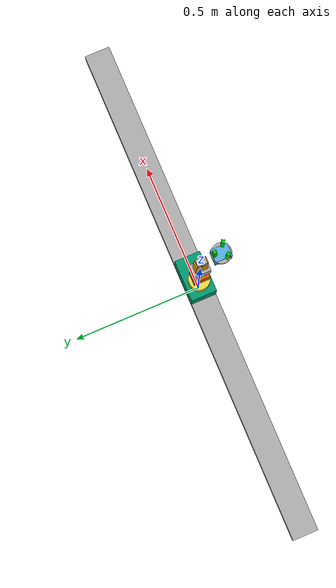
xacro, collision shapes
<?xml version="1.0"?>
<robot xmlns:xacro="http://www.ros.org/wiki/xacro" name="harvest_robot">

  <xacro:include filename="$(find harvest_description)/urdf/mech/rail.urdf.xacro"/>
  <xacro:include filename="$(find harvest_description)/urdf/mech/harvest_arm.urdf.xacro"/>
  <xacro:include filename="$(find harvest_description)/urdf/mech/soft_gripper.urdf.xacro"/>

  <!-- Color Materials -->
  <material name="silver"><color rgba="0.7 0.7 0.7 1.0"/></material>
  <material name="blue"><color rgba="0.0 0.0 0.8 1.0"/></material>
  <material name="green"><color rgba="0.0 0.8 0.0 1.0"/></material>
  <material name="red"><color rgba="0.8 0.0 0.0 1.0"/></material>

  <xacro:rail/>
  <xacro:harvest_arm/>
  <xacro:soft_gripper/>

  <!-- GAZEBO SIMULATION SYSTEM PLUGIN -->
  <!-- Keep the visual simulation independent from ros2_control startup. -->
  <gazebo>
    <plugin filename="gz_ros2_control-system"
        name="gz_ros2_control::GazeboSimROS2ControlPlugin">
      <!-- CRITICAL JAZZY COUPLING: Directs Gazebo to pull from the publisher node -->
      <robot_param>robot_description</robot_param>
      <robot_param_node>robot_state_publisher</robot_param_node>
      <parameters>$(find harvest_description)/urdf/config/robot_controllers.yaml</parameters>
    </plugin>
  </gazebo>

  <!-- ROS2_CONTROL HARDWARE INTERFACE DEFINITION -->
  <ros2_control name="GazeboSimSystem" type="system">
  <hardware>
    <plugin>gz_ros2_control/GazeboSimSystem</plugin>
  </hardware>

  <joint name="rail_joint">
      <command_interface name="position"><param name="min">-0.9</param><param name="max">0.9</param></command_interface>
      <command_interface name="effort"/>
      <state_interface name="position"/><state_interface name="velocity"/><state_interface name="effort"/>
  </joint>
  <joint name="base_joint">
    <command_interface name="position"><param name="min">-3.14</param><param name="max">3.14</param></command_interface>
    <command_interface name="effort"/>
    <state_interface name="position"/><state_interface name="velocity"/><state_interface name="effort"/>
  </joint>
  <joint name="shoulder_joint">
    <command_interface name="position"><param name="min">-1.57</param><param name="max">1.57</param></command_interface>
    <command_interface name="effort"/>
    <state_interface name="position"/><state_interface name="velocity"/><state_interface name="effort"/>
  </joint>
  <joint name="elbow_joint">
    <command_interface name="position"><param name="min">-2.0</param><param name="max">2.0</param></command_interface>
    <command_interface name="effort"/>
    <state_interface name="position"/><state_interface name="velocity"/><state_interface name="effort"/>
  </joint>
  <joint name="wrist_pitch_joint">
    <command_interface name="position"><param name="min">-1.57</param><param name="max">1.57</param></command_interface>
    <command_interface name="effort"/>
    <state_interface name="position"/><state_interface name="velocity"/><state_interface name="effort"/>
  </joint>
  <joint name="wrist_roll_joint">
    <command_interface name="position"><param name="min">-3.14</param><param name="max">3.14</param></command_interface>
    <command_interface name="effort"/>
    <state_interface name="position"/><state_interface name="velocity"/><state_interface name="effort"/>
  </joint>
  <!-- The soft fingers use position commands independently of the arm effort controller. -->
  <joint name="finger_joint_1">
    <command_interface name="position"><param name="min">-0.18</param><param name="max">0.0</param></command_interface>
    <state_interface name="position"/><state_interface name="velocity"/>
  </joint>
  <joint name="finger_joint_2">
    <command_interface name="position"><param name="min">-0.18</param><param name="max">0.0</param></command_interface>
    <state_interface name="position"/><state_interface name="velocity"/>
  </joint>
  <joint name="finger_joint_3">
    <command_interface name="position"><param name="min">-0.18</param><param name="max">0.0</param></command_interface>
    <state_interface name="position"/><state_interface name="velocity"/>
  </joint>
  </ros2_control>

</robot>

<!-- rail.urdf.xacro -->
<robot xmlns:xacro="http://www.ros.org/wiki/xacro">

	<xacro:include filename="$(find harvest_description)/urdf/robot_utils.urdf.xacro"/>

	<xacro:macro name="rail">
		<!-- WORLD ANCHOR AND RAIL -->
		<!-- The rail macro owns the single world link used by the whole robot. -->
		<link name="world"/>

		<joint name="world_to_rail" type="fixed">
			<parent link="world"/>
			<child link="rail_link"/>
			<origin xyz="0 0 0" rpy="0 0 0"/>
		</joint>

		<link name="rail_link">
			<visual>
			<geometry><box size="2.0 0.1 0.05"/></geometry>
			<material name="silver"/>
			</visual>
			<collision>
			<geometry><box size="2.0 0.1 0.05"/></geometry>
			</collision>
			<!-- Heavy structural aluminum rail frame (15 kg) -->
			<xacro:box_inertial mass="15.0" x="2.0" y="0.1" z="0.05">
			<origin xyz="0 0 0" rpy="0 0 0"/>
			</xacro:box_inertial>
		</link>

		<!-- 1. Rail Prismatic Joint -->
		<!-- The carriage frame is on the rail's upper face (half of its 50 mm
		     thickness), so the carriage housing rests directly on the rail. -->
		<joint name="rail_joint" type="prismatic">
			<parent link="rail_link"/>
			<child link="base_link"/>
			<axis xyz="1 0 0"/>
			<limit lower="-0.9" upper="0.9" effort="200.0" velocity="0.5"/>
			<origin xyz="0 0 0.025" rpy="0 0 0"/>
			<!-- Keep rail stiction below the PID's available correction so X can settle on target. -->
			<dynamics damping="2.0" friction="0.1"/>
		</joint>
	</xacro:macro>
</robot>

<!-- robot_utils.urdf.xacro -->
<robot xmlns:xacro="http://www.ros.org/wiki/xacro">

    <!-- INERTIAL MATH MACROS -->
    <!-- Cylinder Inertia Formula -->
    <xacro:macro name="cylinder_inertial" params="mass radius length *origin">
        <inertial>
            <xacro:insert_block name="origin"/>
            <mass value="${mass}"/>
            <inertia ixx="${(1/12) * mass * (3*radius*radius + length*length)}" ixy="0.0" ixz="0.0"
                     iyy="${(1/12) * mass * (3*radius*radius + length*length)}" iyz="0.0"
                     izz="${(1/2) * mass * radius * radius}"/>
        </inertial>
    </xacro:macro>

    <!-- Box Inertia Formula -->
    <xacro:macro name="box_inertial" params="mass x y z *origin">
        <inertial>
            <xacro:insert_block name="origin"/>
            <mass value="${mass}"/>
            <inertia ixx="${(1/12) * mass * (y*y + z*z)}" ixy="0.0" ixz="0.0"
                     iyy="${(1/12) * mass * (x*x + z*z)}" iyz="0.0"
                     izz="${(1/12) * mass * (x*x + y*y)}"/>
        </inertial>
    </xacro:macro>

</robot>

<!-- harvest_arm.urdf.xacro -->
<robot xmlns:xacro="http://www.ros.org/wiki/xacro">

  <xacro:include filename="$(find harvest_description)/urdf/robot_utils.urdf.xacro"/>

  <!-- CAD actuator components are kept visual-only; existing collision bodies
       stay lightweight and predictable for Gazebo contact and dynamics. -->
  <xacro:macro name="actuator_housing_visuals"
               params="xyz housing_rpy internal_rpy">
    <visual>
      <origin xyz="${xyz}" rpy="${housing_rpy}"/>
      <geometry><mesh filename="package://harvest_description/meshes/external_housing.gltf"/></geometry>
    </visual>
    <visual>
      <origin xyz="${xyz}" rpy="${internal_rpy}"/>
      <geometry><mesh filename="package://harvest_description/meshes/gearbox_housing.gltf"/></geometry>
    </visual>
    <visual>
      <origin xyz="${xyz}" rpy="${internal_rpy}"/>
      <geometry><mesh filename="package://harvest_description/meshes/nema17_smal.gltf"/></geometry>
    </visual>
  </xacro:macro>

  <xacro:macro name="output_drive_visual" params="xyz rpy">
    <visual>
      <origin xyz="${xyz}" rpy="${rpy}"/>
      <geometry><mesh filename="package://harvest_description/meshes/exterior_output_drive.gltf"/></geometry>
    </visual>
  </xacro:macro>

  <xacro:macro name="harvest_arm">
    <!--
      The actuator sheet specifies a 200 g turret pedestal and five 575 g
      actuators. The base link carries the pedestal and yaw actuator together.
    -->
    <link name="base_link">
      <visual>
        <!-- Raise the CAD's bottom-at-Z=0.108 mesh datum to the carriage top. -->
        <origin xyz="-0.004 0.0134887 0.108" rpy="0 0 0"/>
        <geometry><mesh filename="package://harvest_description/meshes/base_pcb_box.gltf"/></geometry>
      </visual>
      <!-- CAD yaw housing sits below the output frame; the pin rotates with shoulder_link. -->
      <xacro:actuator_housing_visuals xyz="0 0 0.071"
                                      housing_rpy="0 0 0"
                                      internal_rpy="0 0 -2.83984"/>
      <collision>
        <origin xyz="0.03 0 0.054" rpy="0 0 0"/>
        <geometry><box size="0.16 0.10 0.108"/></geometry>
      </collision>
      <inertial>
        <origin xyz="0 0 0.05" rpy="0 0 0"/>
        <mass value="0.775"/>
        <inertia ixx="0.001230" ixy="0" ixz="0"
                 iyy="0.001230" iyz="0" izz="0.001172"/>
      </inertial>
    </link>

    <!-- The yaw axis sits at the top of the 108 mm pedestal, not in the rail. -->
    <!-- J1 Base Yaw -->
    <joint name="base_joint" type="revolute">
      <parent link="base_link"/>
      <child link="shoulder_link"/>
      <origin xyz="0 0 0.108" rpy="0 0 0"/>
      <axis xyz="0 0 1"/>
      <!-- updated all joint limit tags so that arm does not sag under gravity. -->
      <limit lower="-3.14159" upper="3.14159" effort="4.0" velocity="1.0"/>
      <dynamics damping="0.2" friction="0.05"/>
    </joint>

    <!-- J1 shoulder actuator (575 g), mounted at the first pitch axis. -->
    <link name="shoulder_link">
      <!-- The wide face of the yaw output pin faces outward from the turret. -->
      <xacro:output_drive_visual xyz="0 0 -0.037" rpy="0 0 2.23158"/>
      <visual>
        <!-- The CAD pedestal rises from the base yaw output to the shoulder. -->
        <origin xyz="-0.013783 -0.002826 0.002" rpy="0 0 1.48478"/>
        <geometry><mesh filename="package://harvest_description/meshes/base_to_link.gltf"/></geometry>
      </visual>
      <!-- Housing parts are CAD-aligned to the shoulder output frame at z=0.096. -->
      <xacro:actuator_housing_visuals xyz="0 0.045 0.061"
                                      housing_rpy="1.5708 -1.5708 0"
                                      internal_rpy="1.5708 1.26905 0"/>
      <collision>
        <origin xyz="0 0 0.096" rpy="0 0 0"/>
        <geometry><cylinder radius="0.040" length="0.045"/></geometry>
      </collision>
      <inertial>
        <origin xyz="0 0 0.096" rpy="1.5708 0 0"/>
        <mass value="0.575"/>
        <inertia ixx="0.000327" ixy="0" ixz="0"
                 iyy="0.000327" iyz="0" izz="0.000460"/>
      </inertial>
    </link>

    <!-- Link 1 is 150 mm center-to-center; its 100 g mass is from the sheet. -->
    <!-- J2 Shoulder Pitch (Lifts the entire 2kg arm assembly) -->
    <joint name="shoulder_joint" type="revolute">
      <parent link="shoulder_link"/>
      <child link="elbow_link"/>
      <!-- A zero shoulder angle now points the arm upward for a safe spawn pose. -->
      <origin xyz="0 0 0.061" rpy="0 -1.5708 0"/>
      <axis xyz="0 1 0"/>
      <limit lower="-1.5708" upper="1.5708" effort="8.5" velocity="1.0"/>
      <dynamics damping="0.2" friction="0.05"/>
    </joint>

    <link name="elbow_link">
      <!-- This shoulder pin is on the moving link, with its broad face outward. -->
      <xacro:output_drive_visual xyz="0 0.037 0"
                                 rpy="1.5708 -0.40657 0"/>
      <visual>
        <!-- Rotate around the pin axis; origin compensation keeps the small hole fixed. -->
        <origin xyz="-0.060000 -0.028000 -0.013489"
                rpy="-1.570799 -0.000001 -1.570795"/>
        <!-- Full CAD scale restores both end-hole diameters for the pin fits. -->
        <geometry><mesh filename="package://harvest_description/meshes/joint_to_joint.gltf"
                        scale="1 1 1"/></geometry>
      </visual>
      <collision>
        <origin xyz="0.075 0 0" rpy="0 0 0"/>
        <geometry><box size="0.15 0.035 0.025"/></geometry>
      </collision>
      <inertial>
        <origin xyz="0.075 0 0" rpy="0 0 0"/>
        <mass value="0.10"/>
        <inertia ixx="0.00001917" ixy="0" ixz="0"
                 iyy="0.00019010" iyz="0" izz="0.00019354"/>
      </inertial>
    </link>

    <!-- J2 is at the end of link 1; its actuator mass is kept at the joint. -->
    <joint name="elbow_actuator_mount" type="fixed">
      <parent link="elbow_link"/>
      <child link="elbow_actuator_link"/>
      <origin xyz="0.15 0 0" rpy="0 0 0"/>
    </joint>

    <link name="elbow_actuator_link">
      <!-- CAD elbow housing; its output pin is attached to wrist_pitch_link. -->
      <xacro:actuator_housing_visuals xyz="0 0.037 0"
                                      housing_rpy="1.5708 0 0"
                                      internal_rpy="-1.5708 0.30175 -3.14159"/>
      <collision>
        <geometry><box size="0.065 0.060 0.045"/></geometry>
      </collision>
      <inertial>
        <mass value="0.575"/>
        <inertia ixx="0.0003586" ixy="0" ixz="0"
                 iyy="0.0003981" iyz="0" izz="0.0003813"/>
      </inertial>
    </link>

    <!-- Link 2 is the second 150 mm link, with its 100 g structural mass. -->
    <!-- J3 Elbow Pitch (Lifts the forearm, two actuators, and gripper) -->
    <joint name="elbow_joint" type="revolute">
      <parent link="elbow_actuator_link"/>
      <child link="wrist_pitch_link"/>
      <axis xyz="0 1 0"/>
      <limit lower="-2.0" upper="2.0" effort="8.5" velocity="1.0"/>
      <dynamics damping="0.2" friction="0.05"/>
    </joint>

    <link name="wrist_pitch_link">
      <xacro:output_drive_visual xyz="0 0.037 0"
                                 rpy="1.5708 -1.02212 0"/>
      <visual>
        <!-- Rotate around the pin axis; origin compensation keeps the small hole fixed. -->
        <origin xyz="-0.060000 -0.028000 -0.013489"
                rpy="-1.570802 0.000000 -1.570796"/>
        <!-- Match the first connector's CAD-scale end holes and pin fit. -->
        <geometry><mesh filename="package://harvest_description/meshes/joint_to_joint.gltf"
                        scale="1 1 1"/></geometry>
      </visual>
      <collision>
        <origin xyz="0.075 0 0" rpy="0 0 0"/>
        <geometry><box size="0.15 0.032 0.024"/></geometry>
      </collision>
      <inertial>
        <origin xyz="0.075 0 0" rpy="0 0 0"/>
        <mass value="0.10"/>
        <inertia ixx="0.00001333" ixy="0" ixz="0"
                 iyy="0.00019230" iyz="0" izz="0.00019520"/>
      </inertial>
    </link>

    <!-- J3 is the upper elbow actuator at the end of link 2. -->
    <joint name="wrist_pitch_actuator_mount" type="fixed">
      <parent link="wrist_pitch_link"/>
      <child link="wrist_pitch_actuator_link"/>
      <origin xyz="0.15 0 0" rpy="0 0 0"/>
    </joint>

    <link name="wrist_pitch_actuator_link">
      <!-- CAD wrist-pitch housing; the output pin moves with wrist_roll_link. -->
      <xacro:actuator_housing_visuals xyz="0 0.037 0"
                                      housing_rpy="1.5708 0 0"
                                      internal_rpy="-1.5708 0.30175 -3.14159"/>
      <collision>
        <geometry><box size="0.065 0.060 0.045"/></geometry>
      </collision>
      <inertial>
        <mass value="0.575"/>
        <inertia ixx="0.0003586" ixy="0" ixz="0"
                 iyy="0.0003981" iyz="0" izz="0.0003813"/>
      </inertial>
    </link>

    <!-- Link 3 is the 150 g, 150 mm wrist link from the actuator sheet. -->
    <!-- J4 Wrist Pitch (Lifts the roll actuator and gripper) -->
    <joint name="wrist_pitch_joint" type="revolute">
      <parent link="wrist_pitch_actuator_link"/>
      <child link="wrist_roll_link"/>
      <axis xyz="0 1 0"/>
      <limit lower="-1.5708" upper="1.5708" effort="4.0" velocity="1.5"/>
      <dynamics damping="0.1" friction="0.02"/>
    </joint>

    <link name="wrist_roll_link">
      <xacro:output_drive_visual xyz="0 0.037 0"
                                 rpy="1.5708 0.607152 0"/>
      <visual>
        <origin xyz="0.011667 -0.026998 -0.363404"
                rpy="0 0 -1.5708"/>
        <geometry><mesh filename="package://harvest_description/meshes/Part_4.gltf"/></geometry>
      </visual>
      <collision>
        <origin xyz="0.075 0 0" rpy="0 0 0"/>
        <geometry><box size="0.15 0.045 0.025"/></geometry>
      </collision>
      <inertial>
        <origin xyz="0.075 0 0" rpy="0 0 0"/>
        <mass value="0.15"/>
        <inertia ixx="0.00003313" ixy="0" ixz="0"
                 iyy="0.00028906" iyz="0" izz="0.00030656"/>
      </inertial>
    </link>

    <!-- J4 rolls the tool about the arm's longitudinal axis. -->
    <joint name="wrist_roll_actuator_mount" type="fixed">
      <parent link="wrist_roll_link"/>
      <child link="wrist_roll_actuator_link"/>
      <origin xyz="0.14 -0.072 0" rpy="0 0 0"/>
    </joint>

    <link name="wrist_roll_actuator_link">
      <!-- End housing faces down; the CAD-aligned output pin is on the tool mount. -->
      <xacro:actuator_housing_visuals xyz="-0.037 0 0"
                                      housing_rpy="0 1.5708 0"
                                      internal_rpy="-1.5708 -1.26905 -1.5708"/>
      <collision>
        <geometry><box size="0.065 0.060 0.045"/></geometry>
      </collision>
      <inertial>
        <mass value="0.575"/>
        <inertia ixx="0.0003586" ixy="0" ixz="0"
                 iyy="0.0003981" iyz="0" izz="0.0003813"/>
      </inertial>
    </link>

    <!-- J5 Wrist Roll -->
    <joint name="wrist_roll_joint" type="revolute">
      <parent link="wrist_roll_actuator_link"/>
      <child link="end_effector_tool_mount"/>
      <!-- Place the tool flange on the output face, above the housing when upright. -->
      <origin xyz="0.02 0 0" rpy="0 0 0"/>
      <axis xyz="1 0 0"/>
      <limit lower="-3.14159" upper="3.14159" effort="4.0" velocity="1.5"/>
      <dynamics damping="0.1" friction="0.02"/>
    </joint>

    <link name="end_effector_tool_mount">
      <xacro:output_drive_visual xyz="-0.057 0 0"
                                 rpy="1.5708 0.163976 1.5708"/>
      <visual>
        <origin xyz="0 0 0" rpy="0 1.5708 0"/>
        <geometry><cylinder radius="0.035" length="0.012"/></geometry>
        <material name="silver"/>
      </visual>
      <collision>
        <origin xyz="0 0 0" rpy="0 1.5708 0"/>
        <geometry><cylinder radius="0.035" length="0.012"/></geometry>
      </collision>
      <inertial>
        <mass value="0.01"/>
        <!-- Match the cylinder collision's X-axis length and satisfy rigid-body inertia bounds. -->
        <inertia ixx="0.0000061" ixy="0" ixz="0"
                 iyy="0.0000032" iyz="0" izz="0.0000032"/>
      </inertial>
    </link>
  </xacro:macro>
</robot>

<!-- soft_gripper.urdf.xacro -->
<robot xmlns:xacro="http://www.ros.org/wiki/xacro">

  <xacro:include filename="$(find harvest_description)/urdf/robot_utils.urdf.xacro"/>

  <xacro:macro name="soft_gripper">
    <!-- Mount the camera beside the dark-blue wrist link, clear of the gripper fingers. -->
    <joint name="camera_joint" type="fixed">
      <parent link="wrist_roll_link"/>
      <child link="camera_link"/>
      <!-- Bring the rotated housing edge onto the link's +Y side; aim at berries when upright. -->
      <origin xyz="0.15 0 0" rpy="0 0 1.5"/>
    </joint>

    <link name="camera_link">
      <visual>
        <geometry><box size="0.035 0.035 0.025"/></geometry>
        <material name="silver"/>
      </visual>
      <collision>
        <geometry><box size="0.035 0.035 0.025"/></geometry>
      </collision>
      <xacro:box_inertial mass="0.05" x="0.035" y="0.035" z="0.025">
        <origin xyz="0 0 0" rpy="0 0 0"/>
      </xacro:box_inertial>
    </link>

    <!-- CAMERA SENSOR PLUGIN INTEGRATION -->
    <gazebo reference="camera_link">
      <sensor name="harvester_camera" type="camera">
        <!-- Offset the optical origin just beyond the camera housing's front face. -->
        <pose>0.02 0 0 0 0 0</pose>
        <always_on>true</always_on>
        <update_rate>15.0</update_rate>
        <visualize>true</visualize> <!-- Displays a visual cone of sight inside Gazebo -->
        <topic>camera/image_raw</topic> <!-- The internal Gazebo transport topic channel -->
        <camera>
          <horizontal_fov>1.5708</horizontal_fov> <!-- 90 degree viewing path field -->
          <image>
            <width>640</width>
            <height>360</height>
            <format>R8G8B8</format> <!-- Clear RGB pixel array maps -->
          </image>
          <clip>
            <near>0.02</near> <!-- 2cm minimum focal range for close pluck inspection -->
            <far>5.0</far>
          </clip>
        </camera>
      </sensor>
    </gazebo>

      <!-- Finger Template Macro (Instantiates 3 flexible grasping links at 120-degree patterns) -->
    <!-- Each lightweight 80 mm finger extends forward along the arm's +X axis. -->
    <xacro:macro name="finger" params="prefix angle">
      <!-- Low-effort revolute hinges curl the fingers inward without clamping the berry. -->
      <joint name="finger_joint_${prefix}" type="revolute">
        <parent link="end_effector_tool_mount"/>
        <child link="finger_link_${prefix}"/>
        <origin xyz="0.005 ${0.025 * cos(angle)} ${0.025 * sin(angle)}"
                rpy="${angle} 0 0"/>
        <axis xyz="0 0 1"/>
        <limit lower="-0.18" upper="0.0" effort="0.02" velocity="0.2"/>
        <dynamics damping="0.05" friction="0.01"/>
      </joint>

      <link name="finger_link_${prefix}">
        <visual>
          <origin xyz="0.04 0 0" rpy="0 0 0"/>
          <geometry><box size="0.08 0.012 0.012"/></geometry>
          <material name="green"/>
        </visual>
        <collision>
          <origin xyz="0.04 0 0" rpy="0 0 0"/>
          <geometry><box size="0.08 0.012 0.012"/></geometry>
        </collision>
        <xacro:box_inertial mass="0.02" x="0.08" y="0.012" z="0.012">
          <origin xyz="0.04 0 0" rpy="0 0 0"/>
        </xacro:box_inertial>
      </link>
      <!-- Slight contact friction helps retain a berry while the wrist twists. -->
      <gazebo reference="finger_link_${prefix}">
        <mu1>0.8</mu1>
        <mu2>0.8</mu2>
      </gazebo>
    </xacro:macro>

    <!-- The fingers are spaced at 120-degree intervals -->
    <xacro:finger prefix="1" angle="0.0"/>
    <xacro:finger prefix="2" angle="2.094395"/>
    <xacro:finger prefix="3" angle="4.188790"/>
  </xacro:macro>
</robot>
